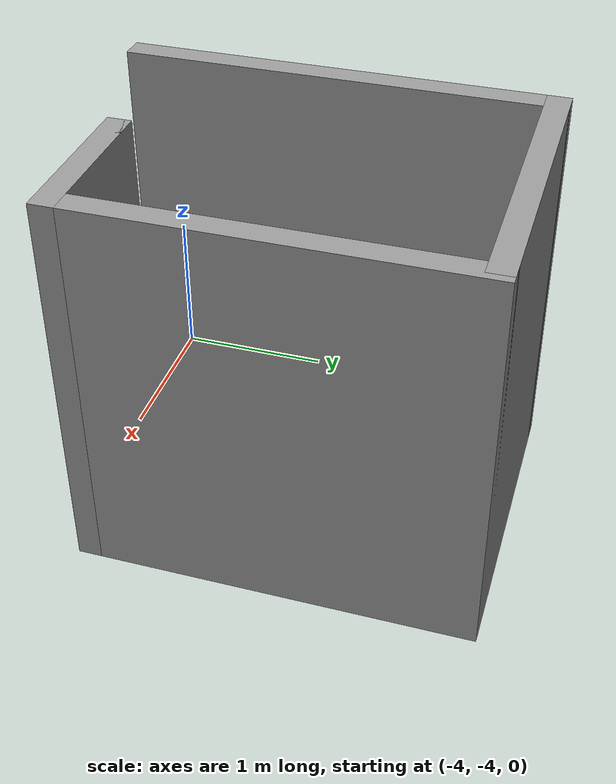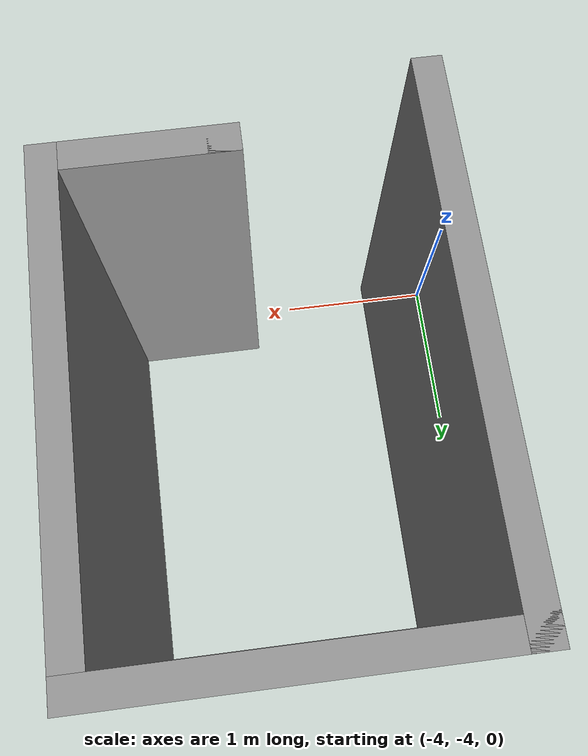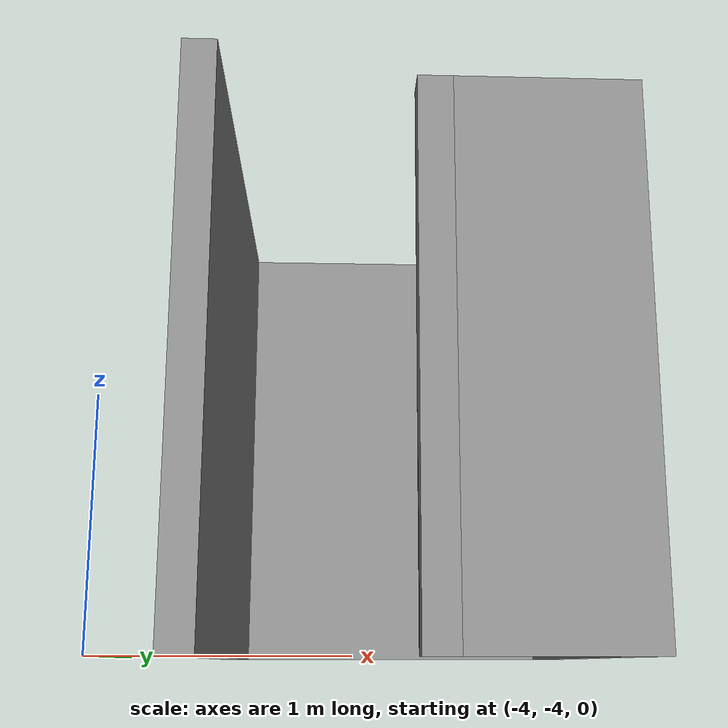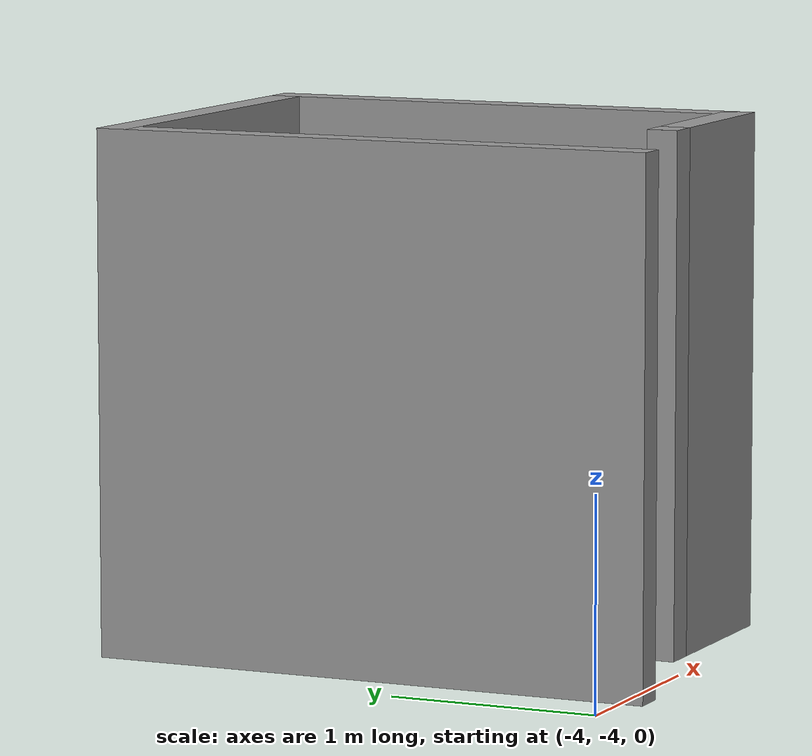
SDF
<?xml version='1.0'?>
<sdf version='1.7'>
  <model name='Untitled'>
    <pose>-1.8625 -2.0575 0 0 -0 0</pose>
    <link name='Wall_0'>
      <collision name='Wall_0_Collision'>
        <geometry>
          <box>
            <size>2.75 0.15 2.5</size>
          </box>
        </geometry>
        <pose>0 0 1.25 0 -0 0</pose>
      </collision>
      <visual name='Wall_0_Visual'>
        <pose>0 0 1.25 0 -0 0</pose>
        <geometry>
          <box>
            <size>2.75 0.15 2.5</size>
          </box>
        </geometry>
        <material>
          <script>
            <uri>file://media/materials/scripts/gazebo.material</uri>
            <name>Gazebo/Grey</name>
          </script>
          <ambient>1 1 1 1</ambient>
        </material>
        <meta>
          <layer>0</layer>
        </meta>
      </visual>
      <pose>-1.7875 -0.6825 0 0 -0 1.5708</pose>
    </link>
    <link name='Wall_1'>
      <collision name='Wall_1_Collision'>
        <geometry>
          <box>
            <size>2 0.15 2.5</size>
          </box>
        </geometry>
        <pose>0 0 1.25 0 -0 0</pose>
      </collision>
      <visual name='Wall_1_Visual'>
        <pose>0 0 1.25 0 -0 0</pose>
        <geometry>
          <box>
            <size>2 0.15 2.5</size>
          </box>
        </geometry>
        <material>
          <script>
            <uri>file://media/materials/scripts/gazebo.material</uri>
            <name>Gazebo/Grey</name>
          </script>
          <ambient>1 1 1 1</ambient>
        </material>
        <meta>
          <layer>0</layer>
        </meta>
      </visual>
      <pose>-0.8625 0.6175 0 0 -0 0</pose>
    </link>
    <link name='Wall_2'>
      <collision name='Wall_2_Collision'>
        <geometry>
          <box>
            <size>2.5 0.15 2.5</size>
          </box>
        </geometry>
        <pose>0 0 1.25 0 -0 0</pose>
      </collision>
      <visual name='Wall_2_Visual'>
        <pose>0 0 1.25 0 -0 0</pose>
        <geometry>
          <box>
            <size>2.5 0.15 2.5</size>
          </box>
        </geometry>
        <material>
          <script>
            <uri>file://media/materials/scripts/gazebo.material</uri>
            <name>Gazebo/Grey</name>
          </script>
          <ambient>1 1 1 1</ambient>
        </material>
        <meta>
          <layer>0</layer>
        </meta>
      </visual>
      <pose>0.0625 -0.5575 0 0 -0 -1.5708</pose>
    </link>
    <link name='Wall_3'>
      <collision name='Wall_3_Collision'>
        <geometry>
          <box>
            <size>1 0.15 2.5</size>
          </box>
        </geometry>
        <pose>0 0 1.25 0 -0 0</pose>
      </collision>
      <visual name='Wall_3_Visual'>
        <pose>0 0 1.25 0 -0 0</pose>
        <geometry>
          <box>
            <size>1 0.15 2.5</size>
          </box>
        </geometry>
        <material>
          <script>
            <uri>file://media/materials/scripts/gazebo.material</uri>
            <name>Gazebo/Grey</name>
          </script>
          <ambient>1 1 1 1</ambient>
        </material>
        <meta>
          <layer>0</layer>
        </meta>
      </visual>
      <pose>-0.3625 -1.7325 0 0 -0 3.14159</pose>
    </link>
    <link name='Wall_4'>
      <collision name='Wall_4_Collision'>
        <geometry>
          <box>
            <size>0.16 0.15 2.5</size>
          </box>
        </geometry>
        <pose>0 0 1.25 0 -0 0</pose>
      </collision>
      <visual name='Wall_4_Visual'>
        <pose>0 0 1.25 0 -0 0</pose>
        <geometry>
          <box>
            <size>0.16 0.15 2.5</size>
          </box>
        </geometry>
        <material>
          <script>
            <uri>file://media/materials/scripts/gazebo.material</uri>
            <name>Gazebo/Grey</name>
          </script>
          <ambient>1 1 1 1</ambient>
        </material>
        <meta>
          <layer>0</layer>
        </meta>
      </visual>
      <pose>-0.7825 -1.7325 0 0 -0 0</pose>
    </link>
    <static>1</static>
  </model>
</sdf>
